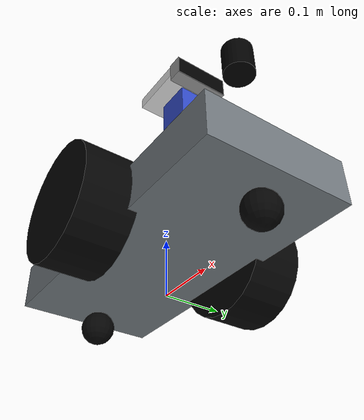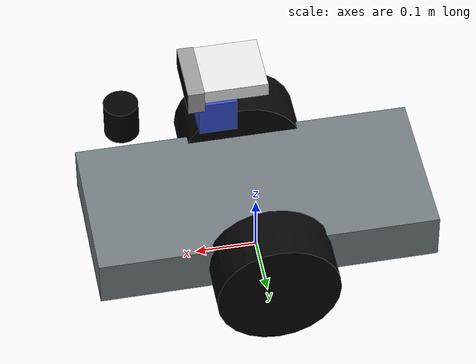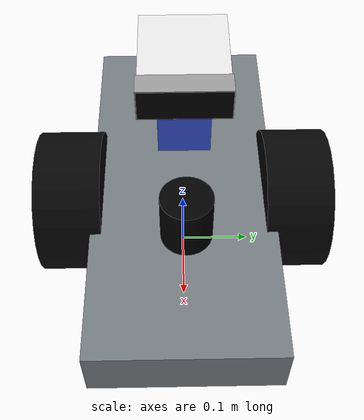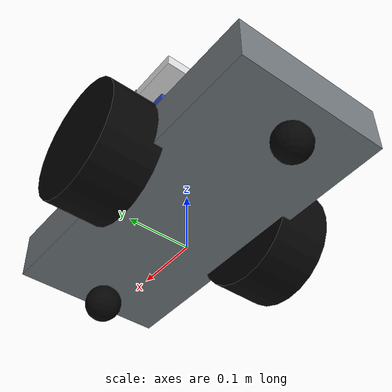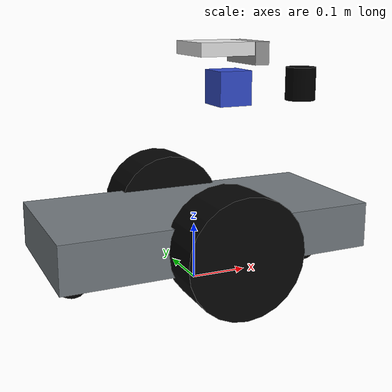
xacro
<?xml version="1.0"?>
<robot name="robot" xmlns:xacro="http://ros.org/wiki/xacro">

  <!-- Include base description with sim mode enabled -->
  <xacro:include filename="$(find robot_core)/urdf/minibase_urdf.xacro"/>
  <!-- sim:=true is passed from the launch file when processing this xacro -->

  <!--                     DIFFERENTIAL DRIVE                           -->
  <!-- Subscribes to gz topic cmd_vel_safe (bridged from /cmd_vel_safe) -->
  <!-- Publishes gz topic gz_wheel_odom (bridged to /wheel/odom in ROS) -->
  <!-- tf_topic is set to __none so the EKF owns odom→base_footprint TF -->
  <gazebo>
    <plugin filename="gz-sim-diff-drive-system"
            name="gz::sim::systems::DiffDrive">
      <left_joint>wheel_left_joint</left_joint>
      <right_joint>wheel_right_joint</right_joint>
      <wheel_separation>0.35</wheel_separation>
      <wheel_radius>0.1</wheel_radius>
      <max_linear_acceleration>1.0</max_linear_acceleration>
      <max_angular_acceleration>2.0</max_angular_acceleration>
      <topic>cmd_vel_safe</topic>
      <odom_topic>gz_wheel_odom</odom_topic>
      <frame_id>odom</frame_id>
      <child_frame_id>base_footprint</child_frame_id>
      <odom_publish_frequency>50</odom_publish_frequency>
      <tf_topic>__none</tf_topic>
    </plugin>
  </gazebo>

  <!--                     JOINT STATE PUBLISHER                        -->
  <!-- Publishes wheel joint positions so robot_state_publisher can     -->
  <!-- compute TF for the continuous wheel joints.                      -->
  <gazebo>
    <plugin filename="gz-sim-joint-state-publisher-system"
            name="gz::sim::systems::JointStatePublisher">
      <topic>joint_states</topic>
      <joint_name>wheel_left_joint</joint_name>
      <joint_name>wheel_right_joint</joint_name>
    </plugin>
  </gazebo>

  <!--              2D GPU LIDAR  (scan_central_link)                   -->
  <!-- Matches PaceCat: 360°, 30 Hz, 0.1–30 m range                    -->
  <!-- Publishes gz topic: scan  →  bridged to ROS /scan                -->
  <gazebo reference="scan_central_link">
    <sensor name="pacecat_lidar" type="gpu_lidar">
      <always_on>true</always_on>
      <visualize>true</visualize>
      <update_rate>30</update_rate>
      <topic>scan</topic>
      <gz_frame_id>scan_central_link</gz_frame_id>
      <lidar>
        <scan>
          <horizontal>
            <samples>720</samples>
            <resolution>1.0</resolution>
            <min_angle>0.0</min_angle>
            <max_angle>6.28318530718</max_angle>
          </horizontal>
        </scan>
        <range>
          <min>0.10</min>
          <max>30.0</max>
          <resolution>0.01</resolution>
        </range>
        <noise>
          <type>gaussian</type>
          <mean>0.0</mean>
          <stddev>0.01</stddev>
        </noise>
      </lidar>
    </sensor>
  </gazebo>

  <!--           RGBD DEPTH CAMERA  (camera_base)                       -->
  <!-- Approximates Azure Kinect DK: 640×576, ~70° FOV, 0.5–5.5 m      -->
  <!-- Publishes gz topics under depth_camera/ prefix:                   -->
  <!--   depth_camera/image          → ROS /depth_camera/image          -->
  <!--   depth_camera/depth_image    → ROS /depth_camera/depth_image    -->
  <!--   depth_camera/camera_info    → ROS /depth_camera/camera_info    -->
  <!--   depth_camera/points         → ROS /depth_camera/points         -->
  <gazebo reference="camera_base">
    <sensor name="depth_camera" type="rgbd_camera">
      <always_on>true</always_on>
      <update_rate>15</update_rate>
      <topic>depth_camera</topic>
      <gz_frame_id>camera_base</gz_frame_id>
      <camera>
        <horizontal_fov>1.2217</horizontal_fov>
        <image>
          <width>640</width>
          <height>576</height>
          <format>R8G8B8</format>
        </image>
        <clip>
          <near>0.5</near>
          <far>5.5</far>
        </clip>
        <optical_frame_id>depth_camera_optical_frame</optical_frame_id>
        <noise>
          <type>gaussian</type>
          <mean>0.0</mean>
          <stddev>0.007</stddev>
        </noise>
      </camera>
    </sensor>
  </gazebo>

  <!--           WITMOTION IMU  (imu_link)  →  EKF                      -->
  <!-- Publishes gz topic: imu  →  bridged to ROS /imu/data_raw         -->
  <!-- imu_filter_madgwick processes it → /imu/data → EKF imu0          -->
  <gazebo reference="imu_link">
    <sensor name="witmotion_imu" type="imu">
      <always_on>true</always_on>
      <update_rate>200</update_rate>
      <topic>imu</topic>
      <gz_frame_id>imu_link</gz_frame_id>
      <imu>
        <angular_velocity>
          <x><noise type="gaussian"><mean>0.0</mean><stddev>2e-4</stddev></noise></x>
          <y><noise type="gaussian"><mean>0.0</mean><stddev>2e-4</stddev></noise></y>
          <z><noise type="gaussian"><mean>0.0</mean><stddev>2e-4</stddev></noise></z>
        </angular_velocity>
        <linear_acceleration>
          <x><noise type="gaussian"><mean>0.0</mean><stddev>1.7e-2</stddev></noise></x>
          <y><noise type="gaussian"><mean>0.0</mean><stddev>1.7e-2</stddev></noise></y>
          <z><noise type="gaussian"><mean>0.0</mean><stddev>1.7e-2</stddev></noise></z>
        </linear_acceleration>
      </imu>
    </sensor>
  </gazebo>

  <!--        AZURE KINECT IMU  (camera_base)  →  RTAB-Map              -->
  <!-- Separate from the depth camera sensor above.                     -->
  <!-- Publishes gz topic: depth_camera/imu                             -->
  <!--   bridged to ROS /depth_camera/imu → RTAB-Map imu_topic         -->
  <gazebo reference="camera_base">
    <sensor name="kinect_imu" type="imu">
      <always_on>true</always_on>
      <update_rate>200</update_rate>
      <topic>depth_camera/imu</topic>
      <gz_frame_id>camera_base</gz_frame_id>
      <imu>
        <angular_velocity>
          <x><noise type="gaussian"><mean>0.0</mean><stddev>2e-4</stddev></noise></x>
          <y><noise type="gaussian"><mean>0.0</mean><stddev>2e-4</stddev></noise></y>
          <z><noise type="gaussian"><mean>0.0</mean><stddev>2e-4</stddev></noise></z>
        </angular_velocity>
        <linear_acceleration>
          <x><noise type="gaussian"><mean>0.0</mean><stddev>1.7e-2</stddev></noise></x>
          <y><noise type="gaussian"><mean>0.0</mean><stddev>1.7e-2</stddev></noise></y>
          <z><noise type="gaussian"><mean>0.0</mean><stddev>1.7e-2</stddev></noise></z>
        </linear_acceleration>
      </imu>
    </sensor>
  </gazebo>

  <!--                     WHEEL FRICTION                               -->
  <!-- High mu values prevent wheel slip on flat indoor surfaces.       -->
  <gazebo reference="wheel_left_link">
    <mu1>100.0</mu1>
    <mu2>50.0</mu2>
    <kp>1000000.0</kp>
    <kd>1.0</kd>
    <minDepth>0.001</minDepth>
    <maxVel>0.1</maxVel>
  </gazebo>
  <gazebo reference="wheel_right_link">
    <mu1>100.0</mu1>
    <mu2>50.0</mu2>
    <kp>1000000.0</kp>
    <kd>1.0</kd>
    <minDepth>0.001</minDepth>
    <maxVel>0.1</maxVel>
  </gazebo>

  <!--                   CASTER FRICTION                                -->
  <!-- Near-zero friction lets the ball casters slide freely,           -->
  <!-- replicating the self-aligning behaviour of real swivel casters.  -->
  <gazebo reference="caster_front_link">
    <mu1>0.0</mu1>
    <mu2>0.0</mu2>
    <kp>1000000.0</kp>
    <kd>1.0</kd>
    <minDepth>0.001</minDepth>
    <maxVel>1.0</maxVel>
  </gazebo>
  <gazebo reference="caster_rear_link">
    <mu1>0.0</mu1>
    <mu2>0.0</mu2>
    <kp>1000000.0</kp>
    <kd>1.0</kd>
    <minDepth>0.001</minDepth>
    <maxVel>1.0</maxVel>
  </gazebo>

</robot>

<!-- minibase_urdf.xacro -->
<robot name="robot" xmlns:xacro="http://ros.org/wiki/xacro">

  <!--                 CONSTANTES Y MACROS                        -->
  <xacro:property name="PI" value="3.14159265"/>

  <xacro:macro name="box_inertial" params="mass x y z">
    <inertial>
      <origin xyz="0 0 0" rpy="0 0 0"/>
      <mass value="${mass}"/>
      <inertia
        ixx="${mass * (y*y + z*z) / 12.0}"
        ixy="0.0"
        ixz="0.0"
        iyy="${mass * (x*x + z*z) / 12.0}"
        iyz="0.0"
        izz="${mass * (x*x + y*y) / 12.0}"/>
    </inertial>
  </xacro:macro>

  <xacro:macro name="cylinder_inertial" params="mass radius length">
    <inertial>
      <origin xyz="0 0 0" rpy="0 0 0"/>
      <mass value="${mass}"/>
      <inertia
        ixx="${mass * (3.0 * radius*radius + length*length) / 12.0}"
        ixy="0.0"
        ixz="0.0"
        iyy="${mass * (3.0 * radius*radius + length*length) / 12.0}"
        iyz="0.0"
        izz="${mass * radius*radius / 2.0}"/>
    </inertial>
  </xacro:macro>

  <xacro:macro name="dummy_inertial">
    <inertial>
      <origin xyz="0 0 0" rpy="0 0 0"/>
      <mass value="0.001"/>
      <inertia ixx="0.000001" ixy="0.0" ixz="0.0" iyy="0.000001" iyz="0.0" izz="0.000001"/>
    </inertial>
  </xacro:macro>

  <xacro:macro name="sphere_inertial" params="mass radius">
    <inertial>
      <origin xyz="0 0 0" rpy="0 0 0"/>
      <mass value="${mass}"/>
      <inertia
        ixx="${2.0 * mass * radius*radius / 5.0}"
        ixy="0.0"
        ixz="0.0"
        iyy="${2.0 * mass * radius*radius / 5.0}"
        iyz="0.0"
        izz="${2.0 * mass * radius*radius / 5.0}"/>
    </inertial>
  </xacro:macro>

  <!--                       CHASIS                               -->
  <!-- Argumentos y Propiedades -->
  <xacro:arg name="base_color" default="0.45 0.48 0.50 1.0"/>
  <xacro:arg name="sim" default="false"/>
  <xacro:arg name="wheel_separation" default="0.315"/>
  <xacro:property name="sim_mode" value="$(arg sim)"/>
  <xacro:property name="wheelSeparation" value="$(arg wheel_separation)"/>
  <xacro:property name="wheelRadius" value="0.1"/>
  <xacro:property name="baseLength" value="0.55"/>
  <xacro:property name="baseWidth" value="${wheelSeparation-0.06}"/>
  <xacro:property name="baseHeight" value="${wheelRadius-0.02}"/>

  <!-- Materiales -->
  <material name="base_gray">
    <color rgba="$(arg base_color)"/>
  </material>

  <!-- Enlaces y Articulaciones -->
  <link name="base_footprint">
    <xacro:dummy_inertial/>
  </link>

  <joint name="base_joint" type="fixed">
    <parent link="base_footprint"/>
    <child link="base_link"/>
    <origin xyz="0 0 ${wheelRadius}" rpy="0 0 0"/>
  </joint>

  <link name="base_link">
    <visual>
      <origin xyz="0 0 0" rpy="0 0 0"/>
      <geometry>
        <box size="${baseLength} ${baseWidth} ${baseHeight}"/>
      </geometry>
      <material name="base_gray"/>
    </visual>
    <collision>
      <origin xyz="0 0 0" rpy="0 0 0"/>
      <geometry>
        <box size="${baseLength} ${baseWidth} ${baseHeight}"/>
      </geometry>
    </collision>
    <xacro:box_inertial mass="8.0" x="${baseLength}" y="${baseWidth}" z="${baseHeight}"/>
  </link>

  <!--                       LLANTAS                              -->
  <!-- Propiedades -->
  <xacro:property name="wheelThickness" value="0.09"/>

  <!-- Materiales -->
  <material name="wheel_black">
    <color rgba="0.02 0.02 0.02 1.0"/>
  </material>

  <!-- Enlaces y Articulaciones -->

  <!-- Rueda Izquierda -->
  <joint name="wheel_left_joint" type="${'continuous' if sim_mode else 'fixed'}">
    <parent link="base_link"/>
    <child link="wheel_left_link"/>
    <origin xyz="0 ${wheelSeparation/2} 0" rpy="${-PI/2} 0 0"/>
    <axis xyz="0 0 1"/>
  </joint>

  <link name="wheel_left_link">
    <visual>
      <origin xyz="0 0 0" rpy="0 0 0"/>
      <geometry>
        <cylinder length="${wheelThickness}" radius="${wheelRadius}"/>
      </geometry>
      <material name="wheel_black"/>
    </visual>
    <collision>
      <origin xyz="0 0 0" rpy="0 0 0"/>
      <geometry>
        <cylinder length="${wheelThickness}" radius="${wheelRadius}"/>
      </geometry>
    </collision>
    <xacro:cylinder_inertial mass="0.8" radius="${wheelRadius}" length="${wheelThickness}"/>
  </link>

  <!-- Rueda Derecha -->
  <joint name="wheel_right_joint" type="${'continuous' if sim_mode else 'fixed'}">
    <parent link="base_link"/>
    <child link="wheel_right_link"/>
    <origin xyz="0 ${-wheelSeparation/2} 0" rpy="${-PI/2} 0 0"/>
    <axis xyz="0 0 1"/>
  </joint>

  <link name="wheel_right_link">
    <visual>
      <origin xyz="0 0 0" rpy="0 0 0"/>
      <geometry>
        <cylinder length="${wheelThickness}" radius="${wheelRadius}"/>
      </geometry>
      <material name="wheel_black"/>
    </visual>
    <collision>
      <origin xyz="0 0 0" rpy="0 0 0"/>
      <geometry>
        <cylinder length="${wheelThickness}" radius="${wheelRadius}"/>
      </geometry>
    </collision>
    <xacro:cylinder_inertial mass="0.8" radius="${wheelRadius}" length="${wheelThickness}"/>
  </link>

  <!--                    SWIVEL CASTERS                          -->
  <!-- Ball casters (sphere r=0.03 m) placed under the chassis    -->
  <!-- front and rear to prevent tipping. Zero friction is set    -->
  <!-- in the sim overlay so they slide freely like real swivels. -->
  <xacro:property name="casterRadius" value="0.03"/>
  <!-- z offset puts the sphere centre at exactly ground level    -->
  <!-- base_link is wheelRadius above ground, so:                 -->
  <!--   z = casterRadius - wheelRadius = 0.03 - 0.10 = -0.07    -->
  <xacro:property name="casterZ" value="${casterRadius - wheelRadius}"/>
  <!-- x offset: inset ~5 cm from each end of the chassis         -->
  <xacro:property name="casterX" value="${baseLength/2 - 0.05}"/>

  <xacro:macro name="swivel_caster" params="prefix x_pos">
    <joint name="caster_${prefix}_joint" type="fixed">
      <parent link="base_link"/>
      <child link="caster_${prefix}_link"/>
      <origin xyz="${x_pos} 0 ${casterZ}" rpy="0 0 0"/>
    </joint>
    <link name="caster_${prefix}_link">
      <visual>
        <origin xyz="0 0 0" rpy="0 0 0"/>
        <geometry>
          <sphere radius="${casterRadius}"/>
        </geometry>
        <material name="wheel_black"/>
      </visual>
      <collision>
        <origin xyz="0 0 0" rpy="0 0 0"/>
        <geometry>
          <sphere radius="${casterRadius}"/>
        </geometry>
      </collision>
      <xacro:sphere_inertial mass="0.1" radius="${casterRadius}"/>
    </link>
  </xacro:macro>

  <xacro:swivel_caster prefix="front" x_pos="${casterX}"/>
  <xacro:swivel_caster prefix="rear"  x_pos="${-casterX}"/>

  <!--                       SENSORES                             -->

  <!-- ======================= IMU ======================= -->
  <xacro:arg name="imu_offset_x" default="0.065"/>
  <xacro:arg name="imu_offset_y" default="0.0"/>
  <xacro:arg name="imu_offset_z" default="0.24"/>
  <xacro:arg name="imu_offset_roll" default="0.0"/>
  <xacro:arg name="imu_offset_pitch" default="0.0"/>
  <xacro:arg name="imu_offset_yaw" default="0.0"/>

  <joint name="imu_joint" type="fixed">
    <parent link="base_link"/>
    <child link="imu_link"/>
    <origin xyz="$(arg imu_offset_x) $(arg imu_offset_y) $(arg imu_offset_z)" rpy="$(arg imu_offset_roll) $(arg imu_offset_pitch) $(arg imu_offset_yaw)"/>
  </joint>

  <material name="imu_blue">
    <color rgba="0.2 0.3 0.8 1.0"/>
  </material>

  <link name="imu_link">
    <visual>
      <origin xyz="0 0 0" rpy="0 0 0"/>
      <geometry>
        <box size="0.06 0.06 0.06"/>
      </geometry>
      <material name="imu_blue"/>
    </visual>
    <collision>
      <origin xyz="0 0 0" rpy="0 0 0"/>
      <geometry>
        <box size="0.06 0.06 0.06"/>
      </geometry>
    </collision>
    <xacro:box_inertial mass="0.1" x="0.06" y="0.06" z="0.06"/>
  </link>

  <!-- ====================== LIDAR ====================== -->
  <xacro:arg name="LIDAR_MODEL" default="pacecat"/> <!-- pacecat, pacecat_cr, rplidar -->
  <xacro:arg name="lidar_offset_x" default="0.2125"/>
  <xacro:arg name="lidar_offset_y" default="0.0"/>
  <xacro:arg name="lidar_offset_z" default="0.24"/>
  <xacro:arg name="lidar_offset_roll" default="0.0"/>
  <xacro:arg name="lidar_offset_pitch" default="0.0"/>
  <xacro:arg name="lidar_offset_yaw" default="0.0"/>

  <xacro:property name="LIDAR_MODEL" value="$(arg LIDAR_MODEL)"/>
  <xacro:property name="lidar_frame" value="scan_central_link"/>
  <xacro:property name="lidar_yaw_val" value="$(arg lidar_offset_yaw)"/>

  <material name="lidar_black">
    <color rgba="0.0 0.0 0.0 1.0"/>
  </material>

  <joint name="lidar_joint" type="fixed">
    <parent link="base_link"/>
    <child link="${lidar_frame}"/>
    <xacro:if value="${LIDAR_MODEL == 'pacecat'}" >
      <origin xyz="$(arg lidar_offset_x) $(arg lidar_offset_y) $(arg lidar_offset_z)" rpy="0 0 0"/>
    </xacro:if>
    <xacro:if value="${LIDAR_MODEL == 'rplidar'}" >
      <origin xyz="$(arg lidar_offset_x) $(arg lidar_offset_y) $(arg lidar_offset_z)" rpy="0 0 ${PI}"/>
    </xacro:if>
  </joint>

  <link name="${lidar_frame}">
    <visual>
      <origin xyz="0 0 0" rpy="0 0 0"/>
      <geometry>
        <cylinder length="0.06" radius="0.0275"/>
      </geometry>
      <material name="lidar_black"/>
    </visual>
    <collision>
      <origin xyz="0 0 0" rpy="0 0 0"/>
      <geometry>
        <cylinder length="0.055" radius="0.055"/>
      </geometry>
    </collision>
    <xacro:cylinder_inertial mass="0.2" radius="0.055" length="0.055"/>
  </link>

  <!-- ===================== KINECT ====================== -->
  <xacro:arg name="kinect_offset_x" default="0.115"/>
  <xacro:arg name="kinect_offset_y" default="0.0"/>
  <xacro:arg name="kinect_offset_z" default="0.30"/>
  <xacro:arg name="kinect_offset_roll" default="0.0"/>
  <xacro:arg name="kinect_offset_pitch" default="0.0"/>
  <xacro:arg name="kinect_offset_yaw" default="0.0"/>

  <joint name="kinect_joint" type="fixed">
    <parent link="base_link"/>
    <child link="camera_base"/>
    <origin xyz="$(arg kinect_offset_x) $(arg kinect_offset_y) $(arg kinect_offset_z)" rpy="$(arg kinect_offset_roll) $(arg kinect_offset_pitch) $(arg kinect_offset_yaw)"/>
  </joint>

  <material name="kinect_black">
    <color rgba="0. 0. 0. 1" />
  </material>
  <material name="kinect_dark_grey">
    <color rgba="0.1 0.1 0.1 1" />
  </material>
  <material name="kinect_grey">
    <color rgba="0.6 0.6 0.6 1" />
  </material>
  <material name="kinect_white">
    <color rgba="0.9 0.9 0.9 1" />
  </material>

  <link name="camera_body">
    <visual>
      <origin xyz="0. 0. 0." />
      <geometry>
        <box size="0.0994 0.0996 0.023" />
      </geometry>
      <material name="kinect_white" />
    </visual>
  </link>

  <link name="camera_base">
    <visual>
      <origin xyz="-0.013 0. 0." />
      <geometry>
        <box size="0.026 0.103 0.039" />
      </geometry>
      <material name="kinect_grey" />
    </visual>
  </link>

  <link name="camera_visor">
    <visual>
      <origin xyz="-0.0128 0. 0." />
      <geometry>
        <box size="0.026 0.101 0.037" />
      </geometry>
      <material name="kinect_black" />
    </visual>
  </link>

  <joint name="camera_base_to_body" type="fixed">
    <parent link="camera_base" />
    <child link="camera_body" />
    <origin xyz="-0.0757 0. 0.008" rpy="0. 0. 0." />
  </joint>

  <joint name="camera_base_to_visor" type="fixed">
    <parent link="camera_base" />
    <child link="camera_visor" />
    <origin xyz="0. 0. 0." rpy="0. 0. 0." />
  </joint>

  <!-- ===================== SIM-ONLY FRAMES ===================== -->
  <!-- These frames are required in simulation for RTAB-Map and   -->
  <!-- pointcloud_roi_node which reference depth_camera_link.     -->
  <xacro:if value="${sim_mode}">
    <link name="depth_camera_link">
      <xacro:dummy_inertial/>
    </link>
    <joint name="camera_base_to_depth_link" type="fixed">
      <parent link="camera_base"/>
      <child link="depth_camera_link"/>
      <origin xyz="0 0 0" rpy="0 0 0"/>
    </joint>

    <link name="depth_camera_optical_frame">
      <xacro:dummy_inertial/>
    </link>
    <joint name="camera_base_to_optical" type="fixed">
      <parent link="camera_base"/>
      <child link="depth_camera_optical_frame"/>
      <origin xyz="0 0 0" rpy="${-PI/2} 0 ${-PI/2}"/>
    </joint>
  </xacro:if>

</robot>
